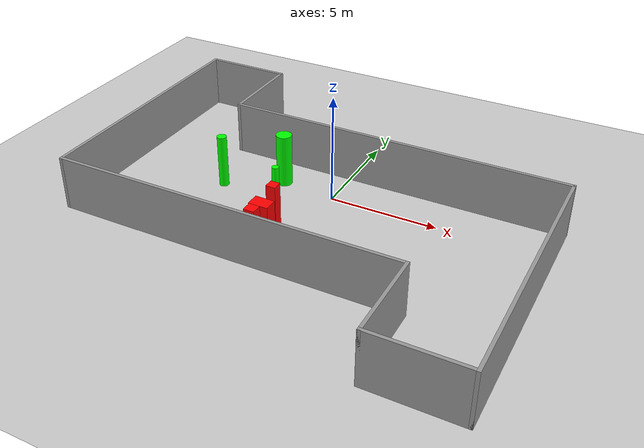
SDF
<sdf version="1.7">
 <world name="default">
  <light name="sun" type="directional">
   <pose>0 0 10 0 -0 0</pose>
   <diffuse>0.8 0.8 0.8 1</diffuse>
   <specular>0.2 0.2 0.2 1</specular>
   <attenuation>
    <range>1000</range>
    <constant>0.9</constant>
    <linear>0.01</linear>
    <quadratic>0.001</quadratic>
   </attenuation>
   <direction>-0.5 0.1 -0.9</direction>
   <spot><inner_angle>0</inner_angle><outer_angle>0</outer_angle><falloff>0</falloff></spot>
  </light>
  <model name="ground_plane">
   <static>1</static>
   <link name="link">
    <collision name="collision">
     <geometry><plane><normal>0 0 1</normal><size>100 100</size></plane></geometry>
     <surface>
      <contact><collide_bitmask>65535</collide_bitmask></contact>
      <friction><ode><mu>100</mu><mu2>50</mu2></ode></friction>
     </surface>
    </collision>
    <visual name="visual">
     <cast_shadows>0</cast_shadows>
     <geometry><plane><normal>0 0 1</normal><size>100 100</size></plane></geometry>
     <material>
      <script><uri>file://media/materials/scripts/gazebo.material</uri><name>Gazebo/Grey</name></script>
     </material>
    </visual>
   </link>
  </model>
  <gravity>0 0 -9.8</gravity>
  <magnetic_field>6e-06 2.3e-05 -4.2e-05</magnetic_field>
  <atmosphere type="adiabatic"/>
  <physics type="ode">
   <max_step_size>0.001</max_step_size>
   <real_time_factor>1</real_time_factor>
   <real_time_update_rate>1000</real_time_update_rate>
  </physics>
  <scene><ambient>0.4 0.4 0.4 1</ambient><background>0.7 0.7 0.7 1</background><shadows>1</shadows></scene>
  <spherical_coordinates>
   <surface_model>EARTH_WGS84</surface_model>
   <latitude_deg>0</latitude_deg>
   <longitude_deg>0</longitude_deg>
   <elevation>0</elevation>
   <heading_deg>0</heading_deg>
  </spherical_coordinates>
  <model name="my_base_walls">
   <link name="Wall_13">
    <collision name="Wall_13_Collision">
     <geometry><box><size>12.15 0.15 2.5</size></box></geometry>
     <pose>0 0 1.25 0 -0 0</pose>
    </collision>
    <visual name="Wall_13_Visual">
     <pose>0 0 1.25 0 -0 0</pose>
     <geometry><box><size>12.15 0.15 2.5</size></box></geometry>
     <material>
      <script><uri>file://media/materials/scripts/gazebo.material</uri><name>Gazebo/Grey</name></script>
      <ambient>1 1 1 1</ambient>
     </material>
     <meta><layer>0</layer></meta>
    </visual>
    <pose>10 -2 0 0 -0 1.5708</pose>
   </link>
   <link name="Wall_15">
    <collision name="Wall_15_Collision">
     <geometry><box><size>16.15 0.15 2.5</size></box></geometry>
     <pose>0 0 1.25 0 -0 0</pose>
    </collision>
    <visual name="Wall_15_Visual">
     <pose>0 0 1.25 0 -0 0</pose>
     <geometry><box><size>16.15 0.15 2.5</size></box></geometry>
     <material>
      <script><uri>file://media/materials/scripts/gazebo.material</uri><name>Gazebo/Grey</name></script>
      <ambient>1 1 1 1</ambient>
     </material>
     <meta><layer>0</layer></meta>
    </visual>
    <pose>2 4 0 0 -0 3.14159</pose>
   </link>
   <link name="Wall_17">
    <collision name="Wall_17_Collision">
     <geometry><box><size>4.15 0.15 2.5</size></box></geometry>
     <pose>0 0 1.25 0 -0 0</pose>
    </collision>
    <visual name="Wall_17_Visual">
     <pose>0 0 1.25 0 -0 0</pose>
     <geometry><box><size>4.15 0.15 2.5</size></box></geometry>
     <material>
      <script><uri>file://media/materials/scripts/gazebo.material</uri><name>Gazebo/Grey</name></script>
      <ambient>1 1 1 1</ambient>
     </material>
     <meta><layer>0</layer></meta>
    </visual>
    <pose>6 -6 0 0 -0 -1.5708</pose>
   </link>
   <link name="Wall_19">
    <collision name="Wall_19_Collision">
     <geometry><box><size>12.15 0.15 2.5</size></box></geometry>
     <pose>0 0 1.25 0 -0 0</pose>
    </collision>
    <visual name="Wall_19_Visual">
     <pose>0 0 1.25 0 -0 0</pose>
     <geometry><box><size>12.15 0.15 2.5</size></box></geometry>
     <material>
      <script><uri>file://media/materials/scripts/gazebo.material</uri><name>Gazebo/Grey</name></script>
      <ambient>1 1 1 1</ambient>
     </material>
     <meta><layer>0</layer></meta>
    </visual>
    <pose>-10 2 0 0 -0 1.5708</pose>
   </link>
   <link name="Wall_21">
    <collision name="Wall_21_Collision">
     <geometry><box><size>4.15 0.15 2.5</size></box></geometry>
     <pose>0 0 1.25 0 -0 0</pose>
    </collision>
    <visual name="Wall_21_Visual">
     <pose>0 0 1.25 0 -0 0</pose>
     <geometry><box><size>4.15 0.15 2.5</size></box></geometry>
     <material>
      <script><uri>file://media/materials/scripts/gazebo.material</uri><name>Gazebo/Grey</name></script>
      <ambient>1 1 1 1</ambient>
     </material>
     <meta><layer>0</layer></meta>
    </visual>
    <pose>-8 8 0 0 -0 0</pose>
   </link>
   <link name="Wall_23">
    <collision name="Wall_23_Collision">
     <geometry><box><size>4.15 0.15 2.5</size></box></geometry>
     <pose>0 0 1.25 0 -0 0</pose>
    </collision>
    <visual name="Wall_23_Visual">
     <pose>0 0 1.25 0 -0 0</pose>
     <geometry><box><size>4.15 0.15 2.5</size></box></geometry>
     <material>
      <script><uri>file://media/materials/scripts/gazebo.material</uri><name>Gazebo/Grey</name></script>
      <ambient>1 1 1 1</ambient>
     </material>
     <meta><layer>0</layer></meta>
    </visual>
    <pose>-6 6 0 0 -0 -1.5708</pose>
   </link>
   <link name="Wall_25">
    <collision name="Wall_25_Collision">
     <geometry><box><size>4.15 0.15 2.5</size></box></geometry>
     <pose>0 0 1.25 0 -0 0</pose>
    </collision>
    <visual name="Wall_25_Visual">
     <pose>0 0 1.25 0 -0 0</pose>
     <geometry><box><size>4.15 0.15 2.5</size></box></geometry>
     <material>
      <script><uri>file://media/materials/scripts/gazebo.material</uri><name>Gazebo/Grey</name></script>
      <ambient>1 1 1 1</ambient>
     </material>
     <meta><layer>0</layer></meta>
    </visual>
    <pose>8 -8 0 0 -0 0</pose>
   </link>
   <link name="Wall_9">
    <collision name="Wall_9_Collision">
     <geometry><box><size>16.15 0.15 2.5</size></box></geometry>
     <pose>0 0 1.25 0 -0 0</pose>
    </collision>
    <visual name="Wall_9_Visual">
     <pose>0 0 1.25 0 -0 0</pose>
     <geometry><box><size>16.15 0.15 2.5</size></box></geometry>
     <material>
      <script><uri>file://media/materials/scripts/gazebo.material</uri><name>Gazebo/Grey</name></script>
      <ambient>1 1 1 1</ambient>
     </material>
     <meta><layer>0</layer></meta>
    </visual>
    <pose>-2 -4 0 0 -0 3.14159</pose>
   </link>
   <static>1</static>
   <pose>-0 -2 0 0 -0 0</pose>
  </model>
  <model name="cylinder1">
   <static>1</static>
   <link name="link">
    <inertial>
     <mass>1</mass>
     <inertia><ixx>0.5</ixx><ixy>0</ixy><ixz>0</ixz><iyy>0.5</iyy><iyz>0</iyz><izz>1</izz></inertia>
    </inertial>
    <collision name="collision">
     <geometry><cylinder><radius>0.15882629996249822</radius><length>2.5</length></cylinder></geometry>
    </collision>
    <visual name="visual">
     <geometry><cylinder><radius>0.15882629996249822</radius><length>2.5</length></cylinder></geometry>
     <material>
      <ambient>0 1 0 1</ambient>
      <diffuse>0 1 0 1</diffuse>
      <specular>0.1 0.1 0.1 1</specular>
      <emissive>0 0 0 0</emissive>
     </material>
    </visual>
   </link>
   <pose>-1.500492547425175 -2.381388708909305 1.25 0 0 0</pose>
  </model>
  <model name="cylinder2">
   <static>1</static>
   <link name="link">
    <inertial>
     <mass>1</mass>
     <inertia><ixx>0.5</ixx><ixy>0</ixy><ixz>0</ixz><iyy>0.5</iyy><iyz>0</iyz><izz>1</izz></inertia>
    </inertial>
    <collision name="collision">
     <geometry><cylinder><radius>0.2230140452132554</radius><length>2.5</length></cylinder></geometry>
    </collision>
    <visual name="visual">
     <geometry><cylinder><radius>0.2230140452132554</radius><length>2.5</length></cylinder></geometry>
     <material>
      <ambient>0 1 0 1</ambient>
      <diffuse>0 1 0 1</diffuse>
      <specular>0.1 0.1 0.1 1</specular>
      <emissive>0 0 0 0</emissive>
     </material>
    </visual>
   </link>
   <pose>-4.978089559108641 -1.157521372172261 1.25 0 0 0</pose>
  </model>
  <model name="cylinder3">
   <static>1</static>
   <link name="link">
    <inertial>
     <mass>1</mass>
     <inertia><ixx>0.5</ixx><ixy>0</ixy><ixz>0</ixz><iyy>0.5</iyy><iyz>0</iyz><izz>1</izz></inertia>
    </inertial>
    <collision name="collision">
     <geometry><cylinder><radius>0.3624443651774523</radius><length>2.5</length></cylinder></geometry>
    </collision>
    <visual name="visual">
     <geometry><cylinder><radius>0.3624443651774523</radius><length>2.5</length></cylinder></geometry>
     <material>
      <ambient>0 1 0 1</ambient>
      <diffuse>0 1 0 1</diffuse>
      <specular>0.1 0.1 0.1 1</specular>
      <emissive>0 0 0 0</emissive>
     </material>
    </visual>
   </link>
   <pose>-2.5866088242366683 0.28023888372610983 1.25 0 0 0</pose>
  </model>
  <model name="box1">
   <static>1</static>
   <link name="link">
    <inertial>
     <mass>1</mass>
     <inertia><ixx>0.083</ixx><ixy>0</ixy><ixz>0</ixz><iyy>0.083</iyy><iyz>0</iyz><izz>0.083</izz></inertia>
    </inertial>
    <collision name="collision">
     <geometry><box><size>0.4805611535793222 0.47541595648120366 2.5</size></box></geometry>
    </collision>
    <visual name="visual">
     <geometry><box><size>0.4805611535793222 0.47541595648120366 2.5</size></box></geometry>
     <material>
      <ambient>1 0 0 1</ambient>
      <diffuse>1 0 0 1</diffuse>
      <specular>0.1 0.1 0.1 1</specular>
      <emissive>0 0 0 0</emissive>
     </material>
    </visual>
    <sensor name="my_contact" type="contact">
     <contact><collision>box_collision</collision><topic>__default_topic__</topic></contact>
    </sensor>
   </link>
   <pose>-0.7503253276226634 -5.542550267756868 1.25 0 0 0</pose>
  </model>
  <model name="box2">
   <static>1</static>
   <link name="link">
    <inertial>
     <mass>1</mass>
     <inertia><ixx>0.083</ixx><ixy>0</ixy><ixz>0</ixz><iyy>0.083</iyy><iyz>0</iyz><izz>0.083</izz></inertia>
    </inertial>
    <collision name="collision">
     <geometry><box><size>0.8633793785751775 0.5960065874159076 2.5</size></box></geometry>
    </collision>
    <visual name="visual">
     <geometry><box><size>0.8633793785751775 0.5960065874159076 2.5</size></box></geometry>
     <material>
      <ambient>1 0 0 1</ambient>
      <diffuse>1 0 0 1</diffuse>
      <specular>0.1 0.1 0.1 1</specular>
      <emissive>0 0 0 0</emissive>
     </material>
    </visual>
    <sensor name="my_contact" type="contact">
     <contact><collision>box_collision</collision><topic>__default_topic__</topic></contact>
    </sensor>
   </link>
   <pose>-0.6128302514950192 -5.018279589386231 1.25 0 0 0</pose>
  </model>
  <model name="box3">
   <static>1</static>
   <link name="link">
    <inertial>
     <mass>1</mass>
     <inertia><ixx>0.083</ixx><ixy>0</ixy><ixz>0</ixz><iyy>0.083</iyy><iyz>0</iyz><izz>0.083</izz></inertia>
    </inertial>
    <collision name="collision">
     <geometry><box><size>0.4304435057882981 0.4378206472313033 2.5</size></box></geometry>
    </collision>
    <visual name="visual">
     <geometry><box><size>0.4304435057882981 0.4378206472313033 2.5</size></box></geometry>
     <material>
      <ambient>1 0 0 1</ambient>
      <diffuse>1 0 0 1</diffuse>
      <specular>0.1 0.1 0.1 1</specular>
      <emissive>0 0 0 0</emissive>
     </material>
    </visual>
    <sensor name="my_contact" type="contact">
     <contact><collision>box_collision</collision><topic>__default_topic__</topic></contact>
    </sensor>
   </link>
   <pose>-0.8834206075802369 -3.6480070367310935 1.25 0 0 0</pose>
  </model>
 </world>
</sdf>
